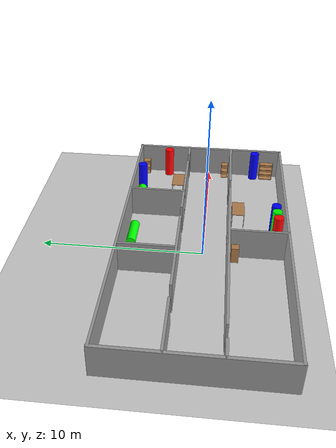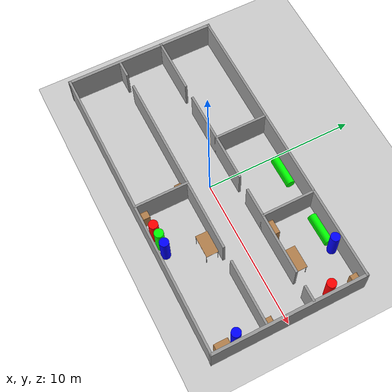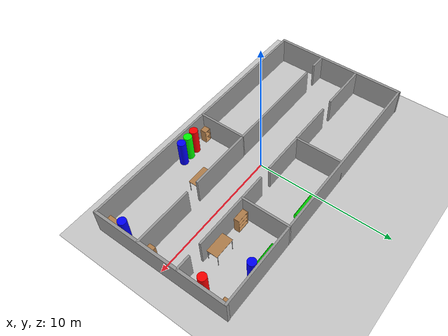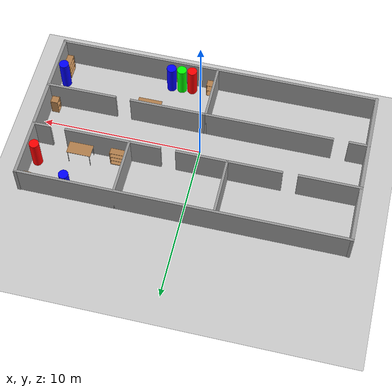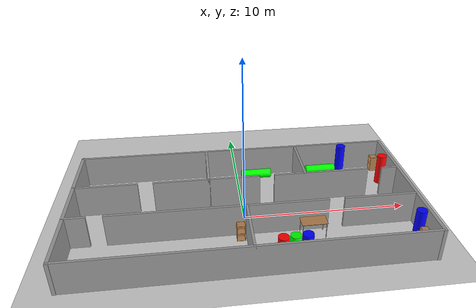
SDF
<sdf version="1.6">
 <world name="default">
  <model name="ground_plane">
   <static>1</static>
   <link name="link">
    <collision name="collision">
     <geometry><plane><normal>0 0 1</normal><size>100 100</size></plane></geometry>
     <surface>
      <contact><collide_bitmask>65535</collide_bitmask></contact>
      <friction><ode><mu>100</mu><mu2>50</mu2></ode></friction>
     </surface>
    </collision>
    <visual name="visual">
     <cast_shadows>0</cast_shadows>
     <geometry><plane><normal>0 0 1</normal><size>100 100</size></plane></geometry>
     <material>
      <script><uri>file://media/materials/scripts/gazebo.material</uri><name>Gazebo/Grey</name></script>
     </material>
    </visual>
   </link>
  </model>
  <model name="indoor1">
   <link name="Wall_17">
    <pose>0 -1.5 0 0 -0 0</pose>
    <visual name="Wall_17_Visual_0">
     <pose>-9.43386 0 1 0 -0 0</pose>
     <geometry><box><size>1.28227 0.15 2</size></box></geometry>
     <material>
      <script><uri>file://media/materials/scripts/gazebo.material</uri><name>Gazebo/Grey</name></script>
      <ambient>1 1 1 1</ambient>
     </material>
     <meta><layer>0</layer></meta>
    </visual>
    <collision name="Wall_17_Collision_0">
     <geometry><box><size>1.28227 0.15 2</size></box></geometry>
     <pose>-9.43386 0 1 0 -0 0</pose>
    </collision>
    <visual name="Wall_17_Visual_1">
     <pose>-1.56699 0 1 0 -0 0</pose>
     <geometry><box><size>12.6515 0.15 2</size></box></geometry>
     <material>
      <script><uri>file://media/materials/scripts/gazebo.material</uri><name>Gazebo/Grey</name></script>
      <ambient>1 1 1 1</ambient>
     </material>
     <meta><layer>0</layer></meta>
    </visual>
    <collision name="Wall_17_Collision_1">
     <geometry><box><size>12.6515 0.15 2</size></box></geometry>
     <pose>-1.56699 0 1 0 -0 0</pose>
    </collision>
    <visual name="Wall_17_Visual_2">
     <pose>7.86687 0 1 0 -0 0</pose>
     <geometry><box><size>4.41625 0.15 2</size></box></geometry>
     <material>
      <script><uri>file://media/materials/scripts/gazebo.material</uri><name>Gazebo/Grey</name></script>
      <ambient>1 1 1 1</ambient>
     </material>
     <meta><layer>0</layer></meta>
    </visual>
    <collision name="Wall_17_Collision_2">
     <geometry><box><size>4.41625 0.15 2</size></box></geometry>
     <pose>7.86687 0 1 0 -0 0</pose>
    </collision>
   </link>
   <link name="Wall_19">
    <pose>0 1.5 0 0 -0 0</pose>
    <visual name="Wall_19_Visual_0">
     <pose>-8.16437 0 1 0 -0 0</pose>
     <geometry><box><size>3.82126 0.15 2</size></box></geometry>
     <material>
      <script><uri>file://media/materials/scripts/gazebo.material</uri><name>Gazebo/Grey</name></script>
      <ambient>1 1 1 1</ambient>
     </material>
     <meta><layer>0</layer></meta>
    </visual>
    <collision name="Wall_19_Collision_0">
     <geometry><box><size>3.82126 0.15 2</size></box></geometry>
     <pose>-8.16437 0 1 0 -0 0</pose>
    </collision>
    <visual name="Wall_19_Visual_1">
     <pose>-2.10232 0 1 0 -0 0</pose>
     <geometry><box><size>6.50284 0.15 2</size></box></geometry>
     <material>
      <script><uri>file://media/materials/scripts/gazebo.material</uri><name>Gazebo/Grey</name></script>
      <ambient>1 1 1 1</ambient>
     </material>
     <meta><layer>0</layer></meta>
    </visual>
    <collision name="Wall_19_Collision_1">
     <geometry><box><size>6.50284 0.15 2</size></box></geometry>
     <pose>-2.10232 0 1 0 -0 0</pose>
    </collision>
    <visual name="Wall_19_Visual_2">
     <pose>5.0405 0 1 0 -0 0</pose>
     <geometry><box><size>5.9828 0.15 2</size></box></geometry>
     <material>
      <script><uri>file://media/materials/scripts/gazebo.material</uri><name>Gazebo/Grey</name></script>
      <ambient>1 1 1 1</ambient>
     </material>
     <meta><layer>0</layer></meta>
    </visual>
    <collision name="Wall_19_Collision_2">
     <geometry><box><size>5.9828 0.15 2</size></box></geometry>
     <pose>5.0405 0 1 0 -0 0</pose>
    </collision>
    <visual name="Wall_19_Visual_3">
     <pose>9.50345 0 1 0 -0 0</pose>
     <geometry><box><size>1.1431 0.15 2</size></box></geometry>
     <material>
      <script><uri>file://media/materials/scripts/gazebo.material</uri><name>Gazebo/Grey</name></script>
      <ambient>1 1 1 1</ambient>
     </material>
     <meta><layer>0</layer></meta>
    </visual>
    <collision name="Wall_19_Collision_3">
     <geometry><box><size>1.1431 0.15 2</size></box></geometry>
     <pose>9.50345 0 1 0 -0 0</pose>
    </collision>
   </link>
   <link name="Wall_21">
    <collision name="Wall_21_Collision">
     <geometry><box><size>3.65 0.15 2</size></box></geometry>
     <pose>0 0 1 0 -0 0</pose>
    </collision>
    <visual name="Wall_21_Visual">
     <pose>0 0 1 0 -0 0</pose>
     <geometry><box><size>3.65 0.15 2</size></box></geometry>
     <material>
      <script><uri>file://media/materials/scripts/gazebo.material</uri><name>Gazebo/Grey</name></script>
      <ambient>1 1 1 1</ambient>
     </material>
     <meta><layer>0</layer></meta>
    </visual>
    <pose>-2 3.25 0 0 -0 1.5708</pose>
   </link>
   <link name="Wall_23">
    <collision name="Wall_23_Collision">
     <geometry><box><size>3.65 0.15 2</size></box></geometry>
     <pose>0 0 1 0 -0 0</pose>
    </collision>
    <visual name="Wall_23_Visual">
     <pose>0 0 1 0 -0 0</pose>
     <geometry><box><size>3.65 0.15 2</size></box></geometry>
     <material>
      <script><uri>file://media/materials/scripts/gazebo.material</uri><name>Gazebo/Grey</name></script>
      <ambient>1 1 1 1</ambient>
     </material>
     <meta><layer>0</layer></meta>
    </visual>
    <pose>4 3.25 0 0 -0 1.5708</pose>
   </link>
   <link name="Wall_25">
    <collision name="Wall_25_Collision">
     <geometry><box><size>3.65 0.15 2</size></box></geometry>
     <pose>0 0 1 0 -0 0</pose>
    </collision>
    <visual name="Wall_25_Visual">
     <pose>0 0 1 0 -0 0</pose>
     <geometry><box><size>3.65 0.15 2</size></box></geometry>
     <material>
      <script><uri>file://media/materials/scripts/gazebo.material</uri><name>Gazebo/Grey</name></script>
      <ambient>1 1 1 1</ambient>
     </material>
     <meta><layer>0</layer></meta>
    </visual>
    <pose>0 -3.25 0 0 -0 1.5708</pose>
   </link>
   <link name="Wall_5">
    <collision name="Wall_5_Collision">
     <geometry><box><size>20.15 0.15 2</size></box></geometry>
     <pose>0 0 1 0 -0 0</pose>
    </collision>
    <visual name="Wall_5_Visual">
     <pose>0 0 1 0 -0 0</pose>
     <geometry><box><size>20.15 0.15 2</size></box></geometry>
     <material>
      <script><uri>file://media/materials/scripts/gazebo.material</uri><name>Gazebo/Grey</name></script>
      <ambient>1 1 1 1</ambient>
     </material>
     <meta><layer>0</layer></meta>
    </visual>
    <pose>0 5 0 0 -0 0</pose>
   </link>
   <link name="Wall_6">
    <collision name="Wall_6_Collision">
     <geometry><box><size>10.2 0.2 2</size></box></geometry>
     <pose>0 0 1 0 -0 0</pose>
    </collision>
    <visual name="Wall_6_Visual">
     <pose>0 0 1 0 -0 0</pose>
     <geometry><box><size>10.2 0.2 2</size></box></geometry>
     <material>
      <script><uri>file://media/materials/scripts/gazebo.material</uri><name>Gazebo/Grey</name></script>
      <ambient>1 1 1 1</ambient>
     </material>
     <meta><layer>0</layer></meta>
    </visual>
    <pose>10 0 0 0 0 -1.5708</pose>
   </link>
   <link name="Wall_7">
    <collision name="Wall_7_Collision">
     <geometry><box><size>20.15 0.15 2</size></box></geometry>
     <pose>0 0 1 0 -0 0</pose>
    </collision>
    <visual name="Wall_7_Visual">
     <pose>0 0 1 0 -0 0</pose>
     <geometry><box><size>20.15 0.15 2</size></box></geometry>
     <material>
      <script><uri>file://media/materials/scripts/gazebo.material</uri><name>Gazebo/Grey</name></script>
      <ambient>1 1 1 1</ambient>
     </material>
     <meta><layer>0</layer></meta>
    </visual>
    <pose>0 -5 0 0 -0 3.14159</pose>
   </link>
   <link name="Wall_8">
    <collision name="Wall_8_Collision">
     <geometry><box><size>10.2 0.2 2</size></box></geometry>
     <pose>0 0 1 0 -0 0</pose>
    </collision>
    <visual name="Wall_8_Visual">
     <pose>0 0 1 0 -0 0</pose>
     <geometry><box><size>10.2 0.2 2</size></box></geometry>
     <material>
      <script><uri>file://media/materials/scripts/gazebo.material</uri><name>Gazebo/Grey</name></script>
      <ambient>1 1 1 1</ambient>
     </material>
     <meta><layer>0</layer></meta>
    </visual>
    <pose>-10 0 0 0 -0 1.5708</pose>
   </link>
   <static>1</static>
  </model>
  <model name="bookshelf2">
   <static>1</static>
   <link name="link">
    <inertial><mass>1</mass></inertial>
    <collision name="back">
     <pose>0 0.005 0.6 0 -0 0</pose>
     <geometry><box><size>0.9 0.01 1.2</size></box></geometry>
    </collision>
    <visual name="visual1">
     <pose>0 0.005 0.6 0 -0 0</pose>
     <geometry><box><size>0.9 0.01 1.2</size></box></geometry>
     <material>
      <script><uri>file://media/materials/scripts/gazebo.material</uri><name>Gazebo/Wood</name></script>
     </material>
    </visual>
    <collision name="left_side">
     <pose>0.45 -0.195 0.6 0 -0 0</pose>
     <geometry><box><size>0.02 0.4 1.2</size></box></geometry>
    </collision>
    <visual name="visual2">
     <pose>0.45 -0.195 0.6 0 -0 0</pose>
     <geometry><box><size>0.02 0.4 1.2</size></box></geometry>
     <material>
      <script><uri>file://media/materials/scripts/gazebo.material</uri><name>Gazebo/Wood</name></script>
     </material>
    </visual>
    <collision name="right_side">
     <pose>-0.45 -0.195 0.6 0 -0 0</pose>
     <geometry><box><size>0.02 0.4 1.2</size></box></geometry>
    </collision>
    <visual name="visual3">
     <pose>-0.45 -0.195 0.6 0 -0 0</pose>
     <geometry><box><size>0.02 0.4 1.2</size></box></geometry>
     <material>
      <script><uri>file://media/materials/scripts/gazebo.material</uri><name>Gazebo/Wood</name></script>
     </material>
    </visual>
    <collision name="bottom">
     <pose>0 -0.195 0.03 0 -0 0</pose>
     <geometry><box><size>0.88 0.4 0.06</size></box></geometry>
    </collision>
    <visual name="visual4">
     <pose>0 -0.195 0.03 0 -0 0</pose>
     <geometry><box><size>0.88 0.4 0.06</size></box></geometry>
     <material>
      <script><uri>file://media/materials/scripts/gazebo.material</uri><name>Gazebo/Wood</name></script>
     </material>
    </visual>
    <collision name="top">
     <pose>0 -0.195 1.19 0 -0 0</pose>
     <geometry><box><size>0.88 0.4 0.02</size></box></geometry>
    </collision>
    <visual name="visual5">
     <pose>0 -0.195 1.19 0 -0 0</pose>
     <geometry><box><size>0.88 0.4 0.02</size></box></geometry>
     <material>
      <script><uri>file://media/materials/scripts/gazebo.material</uri><name>Gazebo/Wood</name></script>
     </material>
    </visual>
    <collision name="low_shelf">
     <pose>0 -0.195 0.43 0 -0 0</pose>
     <geometry><box><size>0.88 0.4 0.02</size></box></geometry>
    </collision>
    <visual name="visual6">
     <pose>0 -0.195 0.43 0 -0 0</pose>
     <geometry><box><size>0.88 0.4 0.02</size></box></geometry>
     <material>
      <script><uri>file://media/materials/scripts/gazebo.material</uri><name>Gazebo/Wood</name></script>
     </material>
    </visual>
    <collision name="high_shelf">
     <pose>0 -0.195 0.8 0 -0 0</pose>
     <geometry><box><size>0.88 0.4 0.02</size></box></geometry>
    </collision>
    <visual name="visual7">
     <pose>0 -0.195 0.8 0 -0 0</pose>
     <geometry><box><size>0.88 0.4 0.02</size></box></geometry>
     <material>
      <script><uri>file://media/materials/scripts/gazebo.material</uri><name>Gazebo/Wood</name></script>
     </material>
    </visual>
   </link>
   <pose>4.67727 1.69299 0 0 0 -3.14159</pose>
  </model>
  <model name="bookshelf3">
   <static>1</static>
   <link name="link">
    <inertial><mass>1</mass></inertial>
    <collision name="back">
     <pose>0 0.005 0.6 0 -0 0</pose>
     <geometry><box><size>0.9 0.01 1.2</size></box></geometry>
    </collision>
    <visual name="visual1">
     <pose>0 0.005 0.6 0 -0 0</pose>
     <geometry><box><size>0.9 0.01 1.2</size></box></geometry>
     <material>
      <script><uri>file://media/materials/scripts/gazebo.material</uri><name>Gazebo/Wood</name></script>
     </material>
    </visual>
    <collision name="left_side">
     <pose>0.45 -0.195 0.6 0 -0 0</pose>
     <geometry><box><size>0.02 0.4 1.2</size></box></geometry>
    </collision>
    <visual name="visual2">
     <pose>0.45 -0.195 0.6 0 -0 0</pose>
     <geometry><box><size>0.02 0.4 1.2</size></box></geometry>
     <material>
      <script><uri>file://media/materials/scripts/gazebo.material</uri><name>Gazebo/Wood</name></script>
     </material>
    </visual>
    <collision name="right_side">
     <pose>-0.45 -0.195 0.6 0 -0 0</pose>
     <geometry><box><size>0.02 0.4 1.2</size></box></geometry>
    </collision>
    <visual name="visual3">
     <pose>-0.45 -0.195 0.6 0 -0 0</pose>
     <geometry><box><size>0.02 0.4 1.2</size></box></geometry>
     <material>
      <script><uri>file://media/materials/scripts/gazebo.material</uri><name>Gazebo/Wood</name></script>
     </material>
    </visual>
    <collision name="bottom">
     <pose>0 -0.195 0.03 0 -0 0</pose>
     <geometry><box><size>0.88 0.4 0.06</size></box></geometry>
    </collision>
    <visual name="visual4">
     <pose>0 -0.195 0.03 0 -0 0</pose>
     <geometry><box><size>0.88 0.4 0.06</size></box></geometry>
     <material>
      <script><uri>file://media/materials/scripts/gazebo.material</uri><name>Gazebo/Wood</name></script>
     </material>
    </visual>
    <collision name="top">
     <pose>0 -0.195 1.19 0 -0 0</pose>
     <geometry><box><size>0.88 0.4 0.02</size></box></geometry>
    </collision>
    <visual name="visual5">
     <pose>0 -0.195 1.19 0 -0 0</pose>
     <geometry><box><size>0.88 0.4 0.02</size></box></geometry>
     <material>
      <script><uri>file://media/materials/scripts/gazebo.material</uri><name>Gazebo/Wood</name></script>
     </material>
    </visual>
    <collision name="low_shelf">
     <pose>0 -0.195 0.43 0 -0 0</pose>
     <geometry><box><size>0.88 0.4 0.02</size></box></geometry>
    </collision>
    <visual name="visual6">
     <pose>0 -0.195 0.43 0 -0 0</pose>
     <geometry><box><size>0.88 0.4 0.02</size></box></geometry>
     <material>
      <script><uri>file://media/materials/scripts/gazebo.material</uri><name>Gazebo/Wood</name></script>
     </material>
    </visual>
    <collision name="high_shelf">
     <pose>0 -0.195 0.8 0 -0 0</pose>
     <geometry><box><size>0.88 0.4 0.02</size></box></geometry>
    </collision>
    <visual name="visual7">
     <pose>0 -0.195 0.8 0 -0 0</pose>
     <geometry><box><size>0.88 0.4 0.02</size></box></geometry>
     <material>
      <script><uri>file://media/materials/scripts/gazebo.material</uri><name>Gazebo/Wood</name></script>
     </material>
    </visual>
   </link>
   <pose>9.76318 -4.11921 0 0 0 -1.57079</pose>
  </model>
  <model name="cabinet0">
   <static>1</static>
   <link name="cabinet_bottom_plate">
    <inertial>
     <pose>0 0 -1 0 -0 0</pose>
     <inertia><ixx>2.05</ixx><ixy>0</ixy><ixz>0</ixz><iyy>2.05</iyy><iyz>0</iyz><izz>2.05</izz></inertia>
     <mass>25</mass>
    </inertial>
    <collision name="cabinet_bottom_plate_geom">
     <pose>0 0 0.01 0 -0 0</pose>
     <geometry><box><size>0.45 0.45 0.02</size></box></geometry>
    </collision>
    <visual name="cabinet_bottom_plate_geom_visual">
     <pose>0 0 0.01 0 -0 0</pose>
     <geometry><box><size>0.45 0.45 0.02</size></box></geometry>
     <material>
      <script><uri>file://media/materials/scripts/gazebo.material</uri><name>Gazebo/Wood</name></script>
     </material>
    </visual>
    <collision name="cabinet_bottom_plate_geom_cabinet_back_plate">
     <pose>0.235 0 0.51 0 -0 0</pose>
     <geometry><box><size>0.02 0.45 1.02</size></box></geometry>
    </collision>
    <visual name="cabinet_bottom_plate_geom_cabinet_back_plate_visual">
     <pose>0.235 0 0.51 0 -0 0</pose>
     <geometry><box><size>0.02 0.45 1.02</size></box></geometry>
     <material>
      <script><uri>file://media/materials/scripts/gazebo.material</uri><name>Gazebo/Wood</name></script>
     </material>
    </visual>
    <collision name="cabinet_bottom_plate_geom_cabinet_left_plate">
     <pose>0 0.235 0.51 0 -0 0</pose>
     <geometry><box><size>0.45 0.02 1.02</size></box></geometry>
    </collision>
    <visual name="cabinet_bottom_plate_geom_cabinet_left_plate_visual">
     <pose>0 0.235 0.51 0 -0 0</pose>
     <geometry><box><size>0.45 0.02 1.02</size></box></geometry>
     <material>
      <script><uri>file://media/materials/scripts/gazebo.material</uri><name>Gazebo/Wood</name></script>
     </material>
    </visual>
    <collision name="cabinet_bottom_plate_geom_cabinet_middle_plate">
     <pose>0 0 0.51 0 -0 0</pose>
     <geometry><box><size>0.45 0.45 0.02</size></box></geometry>
    </collision>
    <visual name="cabinet_bottom_plate_geom_cabinet_middle_plate_visual">
     <pose>0 0 0.51 0 -0 0</pose>
     <geometry><box><size>0.45 0.45 0.02</size></box></geometry>
     <material>
      <script><uri>file://media/materials/scripts/gazebo.material</uri><name>Gazebo/Wood</name></script>
     </material>
    </visual>
    <collision name="cabinet_bottom_plate_geom_cabinet_right_plate">
     <pose>0 -0.235 0.51 0 -0 0</pose>
     <geometry><box><size>0.45 0.02 1.02</size></box></geometry>
    </collision>
    <visual name="cabinet_bottom_plate_geom_cabinet_right_plate_visual">
     <pose>0 -0.235 0.51 0 -0 0</pose>
     <geometry><box><size>0.45 0.02 1.02</size></box></geometry>
     <material>
      <script><uri>file://media/materials/scripts/gazebo.material</uri><name>Gazebo/Wood</name></script>
     </material>
    </visual>
    <collision name="cabinet_bottom_plate_geom_cabinet_top_plate">
     <pose>0 0 1.01 0 -0 0</pose>
     <geometry><box><size>0.45 0.45 0.02</size></box></geometry>
    </collision>
    <visual name="cabinet_bottom_plate_geom_cabinet_top_plate_visual">
     <pose>0 0 1.01 0 -0 0</pose>
     <geometry><box><size>0.45 0.45 0.02</size></box></geometry>
     <material>
      <script><uri>file://media/materials/scripts/gazebo.material</uri><name>Gazebo/Wood</name></script>
     </material>
    </visual>
   </link>
   <pose>9.58424 4.59301 0 0 -0 0</pose>
  </model>
  <model name="cabinet1">
   <static>1</static>
   <link name="cabinet_bottom_plate">
    <inertial>
     <pose>0 0 -1 0 -0 0</pose>
     <inertia><ixx>2.05</ixx><ixy>0</ixy><ixz>0</ixz><iyy>2.05</iyy><iyz>0</iyz><izz>2.05</izz></inertia>
     <mass>25</mass>
    </inertial>
    <collision name="cabinet_bottom_plate_geom">
     <pose>0 0 0.01 0 -0 0</pose>
     <geometry><box><size>0.45 0.45 0.02</size></box></geometry>
    </collision>
    <visual name="cabinet_bottom_plate_geom_visual">
     <pose>0 0 0.01 0 -0 0</pose>
     <geometry><box><size>0.45 0.45 0.02</size></box></geometry>
     <material>
      <script><uri>file://media/materials/scripts/gazebo.material</uri><name>Gazebo/Wood</name></script>
     </material>
    </visual>
    <collision name="cabinet_bottom_plate_geom_cabinet_back_plate">
     <pose>0.235 0 0.51 0 -0 0</pose>
     <geometry><box><size>0.02 0.45 1.02</size></box></geometry>
    </collision>
    <visual name="cabinet_bottom_plate_geom_cabinet_back_plate_visual">
     <pose>0.235 0 0.51 0 -0 0</pose>
     <geometry><box><size>0.02 0.45 1.02</size></box></geometry>
     <material>
      <script><uri>file://media/materials/scripts/gazebo.material</uri><name>Gazebo/Wood</name></script>
     </material>
    </visual>
    <collision name="cabinet_bottom_plate_geom_cabinet_left_plate">
     <pose>0 0.235 0.51 0 -0 0</pose>
     <geometry><box><size>0.45 0.02 1.02</size></box></geometry>
    </collision>
    <visual name="cabinet_bottom_plate_geom_cabinet_left_plate_visual">
     <pose>0 0.235 0.51 0 -0 0</pose>
     <geometry><box><size>0.45 0.02 1.02</size></box></geometry>
     <material>
      <script><uri>file://media/materials/scripts/gazebo.material</uri><name>Gazebo/Wood</name></script>
     </material>
    </visual>
    <collision name="cabinet_bottom_plate_geom_cabinet_middle_plate">
     <pose>0 0 0.51 0 -0 0</pose>
     <geometry><box><size>0.45 0.45 0.02</size></box></geometry>
    </collision>
    <visual name="cabinet_bottom_plate_geom_cabinet_middle_plate_visual">
     <pose>0 0 0.51 0 -0 0</pose>
     <geometry><box><size>0.45 0.45 0.02</size></box></geometry>
     <material>
      <script><uri>file://media/materials/scripts/gazebo.material</uri><name>Gazebo/Wood</name></script>
     </material>
    </visual>
    <collision name="cabinet_bottom_plate_geom_cabinet_right_plate">
     <pose>0 -0.235 0.51 0 -0 0</pose>
     <geometry><box><size>0.45 0.02 1.02</size></box></geometry>
    </collision>
    <visual name="cabinet_bottom_plate_geom_cabinet_right_plate_visual">
     <pose>0 -0.235 0.51 0 -0 0</pose>
     <geometry><box><size>0.45 0.02 1.02</size></box></geometry>
     <material>
      <script><uri>file://media/materials/scripts/gazebo.material</uri><name>Gazebo/Wood</name></script>
     </material>
    </visual>
    <collision name="cabinet_bottom_plate_geom_cabinet_top_plate">
     <pose>0 0 1.01 0 -0 0</pose>
     <geometry><box><size>0.45 0.45 0.02</size></box></geometry>
    </collision>
    <visual name="cabinet_bottom_plate_geom_cabinet_top_plate_visual">
     <pose>0 0 1.01 0 -0 0</pose>
     <geometry><box><size>0.45 0.45 0.02</size></box></geometry>
     <material>
      <script><uri>file://media/materials/scripts/gazebo.material</uri><name>Gazebo/Wood</name></script>
     </material>
    </visual>
   </link>
   <pose>9.56465 -1.12003 0 0 -0 0</pose>
  </model>
  <model name="cabinet2">
   <static>1</static>
   <link name="cabinet_bottom_plate">
    <inertial>
     <pose>0 0 -1 0 -0 0</pose>
     <inertia><ixx>2.05</ixx><ixy>0</ixy><ixz>0</ixz><iyy>2.05</iyy><iyz>0</iyz><izz>2.05</izz></inertia>
     <mass>25</mass>
    </inertial>
    <collision name="cabinet_bottom_plate_geom">
     <pose>0 0 0.01 0 -0 0</pose>
     <geometry><box><size>0.45 0.45 0.02</size></box></geometry>
    </collision>
    <visual name="cabinet_bottom_plate_geom_visual">
     <pose>0 0 0.01 0 -0 0</pose>
     <geometry><box><size>0.45 0.45 0.02</size></box></geometry>
     <material>
      <script><uri>file://media/materials/scripts/gazebo.material</uri><name>Gazebo/Wood</name></script>
     </material>
    </visual>
    <collision name="cabinet_bottom_plate_geom_cabinet_back_plate">
     <pose>0.235 0 0.51 0 -0 0</pose>
     <geometry><box><size>0.02 0.45 1.02</size></box></geometry>
    </collision>
    <visual name="cabinet_bottom_plate_geom_cabinet_back_plate_visual">
     <pose>0.235 0 0.51 0 -0 0</pose>
     <geometry><box><size>0.02 0.45 1.02</size></box></geometry>
     <material>
      <script><uri>file://media/materials/scripts/gazebo.material</uri><name>Gazebo/Wood</name></script>
     </material>
    </visual>
    <collision name="cabinet_bottom_plate_geom_cabinet_left_plate">
     <pose>0 0.235 0.51 0 -0 0</pose>
     <geometry><box><size>0.45 0.02 1.02</size></box></geometry>
    </collision>
    <visual name="cabinet_bottom_plate_geom_cabinet_left_plate_visual">
     <pose>0 0.235 0.51 0 -0 0</pose>
     <geometry><box><size>0.45 0.02 1.02</size></box></geometry>
     <material>
      <script><uri>file://media/materials/scripts/gazebo.material</uri><name>Gazebo/Wood</name></script>
     </material>
    </visual>
    <collision name="cabinet_bottom_plate_geom_cabinet_middle_plate">
     <pose>0 0 0.51 0 -0 0</pose>
     <geometry><box><size>0.45 0.45 0.02</size></box></geometry>
    </collision>
    <visual name="cabinet_bottom_plate_geom_cabinet_middle_plate_visual">
     <pose>0 0 0.51 0 -0 0</pose>
     <geometry><box><size>0.45 0.45 0.02</size></box></geometry>
     <material>
      <script><uri>file://media/materials/scripts/gazebo.material</uri><name>Gazebo/Wood</name></script>
     </material>
    </visual>
    <collision name="cabinet_bottom_plate_geom_cabinet_right_plate">
     <pose>0 -0.235 0.51 0 -0 0</pose>
     <geometry><box><size>0.45 0.02 1.02</size></box></geometry>
    </collision>
    <visual name="cabinet_bottom_plate_geom_cabinet_right_plate_visual">
     <pose>0 -0.235 0.51 0 -0 0</pose>
     <geometry><box><size>0.45 0.02 1.02</size></box></geometry>
     <material>
      <script><uri>file://media/materials/scripts/gazebo.material</uri><name>Gazebo/Wood</name></script>
     </material>
    </visual>
    <collision name="cabinet_bottom_plate_geom_cabinet_top_plate">
     <pose>0 0 1.01 0 -0 0</pose>
     <geometry><box><size>0.45 0.45 0.02</size></box></geometry>
    </collision>
    <visual name="cabinet_bottom_plate_geom_cabinet_top_plate_visual">
     <pose>0 0 1.01 0 -0 0</pose>
     <geometry><box><size>0.45 0.45 0.02</size></box></geometry>
     <material>
      <script><uri>file://media/materials/scripts/gazebo.material</uri><name>Gazebo/Wood</name></script>
     </material>
    </visual>
   </link>
   <pose>-0.396131 -1.93123 0 0 -0 1.5708</pose>
  </model>
  <model name="cabinet5">
   <static>1</static>
   <link name="cabinet_bottom_plate">
    <inertial>
     <pose>0 0 -1 0 -0 0</pose>
     <inertia><ixx>2.05</ixx><ixy>0</ixy><ixz>0</ixz><iyy>2.05</iyy><iyz>0</iyz><izz>2.05</izz></inertia>
     <mass>25</mass>
    </inertial>
    <collision name="cabinet_bottom_plate_geom">
     <pose>0 0 0.01 0 -0 0</pose>
     <geometry><box><size>0.45 0.45 0.02</size></box></geometry>
    </collision>
    <visual name="cabinet_bottom_plate_geom_visual">
     <pose>0 0 0.01 0 -0 0</pose>
     <geometry><box><size>0.45 0.45 0.02</size></box></geometry>
     <material>
      <script><uri>file://media/materials/scripts/gazebo.material</uri><name>Gazebo/Wood</name></script>
     </material>
    </visual>
    <collision name="cabinet_bottom_plate_geom_cabinet_back_plate">
     <pose>0.235 0 0.51 0 -0 0</pose>
     <geometry><box><size>0.02 0.45 1.02</size></box></geometry>
    </collision>
    <visual name="cabinet_bottom_plate_geom_cabinet_back_plate_visual">
     <pose>0.235 0 0.51 0 -0 0</pose>
     <geometry><box><size>0.02 0.45 1.02</size></box></geometry>
     <material>
      <script><uri>file://media/materials/scripts/gazebo.material</uri><name>Gazebo/Wood</name></script>
     </material>
    </visual>
    <collision name="cabinet_bottom_plate_geom_cabinet_left_plate">
     <pose>0 0.235 0.51 0 -0 0</pose>
     <geometry><box><size>0.45 0.02 1.02</size></box></geometry>
    </collision>
    <visual name="cabinet_bottom_plate_geom_cabinet_left_plate_visual">
     <pose>0 0.235 0.51 0 -0 0</pose>
     <geometry><box><size>0.45 0.02 1.02</size></box></geometry>
     <material>
      <script><uri>file://media/materials/scripts/gazebo.material</uri><name>Gazebo/Wood</name></script>
     </material>
    </visual>
    <collision name="cabinet_bottom_plate_geom_cabinet_middle_plate">
     <pose>0 0 0.51 0 -0 0</pose>
     <geometry><box><size>0.45 0.45 0.02</size></box></geometry>
    </collision>
    <visual name="cabinet_bottom_plate_geom_cabinet_middle_plate_visual">
     <pose>0 0 0.51 0 -0 0</pose>
     <geometry><box><size>0.45 0.45 0.02</size></box></geometry>
     <material>
      <script><uri>file://media/materials/scripts/gazebo.material</uri><name>Gazebo/Wood</name></script>
     </material>
    </visual>
    <collision name="cabinet_bottom_plate_geom_cabinet_right_plate">
     <pose>0 -0.235 0.51 0 -0 0</pose>
     <geometry><box><size>0.45 0.02 1.02</size></box></geometry>
    </collision>
    <visual name="cabinet_bottom_plate_geom_cabinet_right_plate_visual">
     <pose>0 -0.235 0.51 0 -0 0</pose>
     <geometry><box><size>0.45 0.02 1.02</size></box></geometry>
     <material>
      <script><uri>file://media/materials/scripts/gazebo.material</uri><name>Gazebo/Wood</name></script>
     </material>
    </visual>
    <collision name="cabinet_bottom_plate_geom_cabinet_top_plate">
     <pose>0 0 1.01 0 -0 0</pose>
     <geometry><box><size>0.45 0.45 0.02</size></box></geometry>
    </collision>
    <visual name="cabinet_bottom_plate_geom_cabinet_top_plate_visual">
     <pose>0 0 1.01 0 -0 0</pose>
     <geometry><box><size>0.45 0.45 0.02</size></box></geometry>
     <material>
      <script><uri>file://media/materials/scripts/gazebo.material</uri><name>Gazebo/Wood</name></script>
     </material>
    </visual>
   </link>
   <pose>0.359861 -4.56277 0 0 0 -1.5708</pose>
  </model>
  <model name="table1">
   <static>1</static>
   <link name="link">
    <collision name="surface">
     <pose>0 0 1 0 -0 0</pose>
     <geometry><box><size>1.5 0.8 0.03</size></box></geometry>
     <surface><friction><ode><mu>0.6</mu><mu2>0.6</mu2></ode></friction></surface>
    </collision>
    <visual name="visual1">
     <pose>0 0 1 0 -0 0</pose>
     <geometry><box><size>1.5 0.8 0.03</size></box></geometry>
     <material>
      <script><uri>file://media/materials/scripts/gazebo.material</uri><name>Gazebo/Wood</name></script>
     </material>
    </visual>
    <collision name="front_left_leg">
     <pose>0.68 0.38 0.5 0 -0 0</pose>
     <geometry><cylinder><radius>0.02</radius><length>1</length></cylinder></geometry>
    </collision>
    <visual name="front_left_leg">
     <pose>0.68 0.38 0.5 0 -0 0</pose>
     <geometry><cylinder><radius>0.02</radius><length>1</length></cylinder></geometry>
     <material>
      <script><uri>file://media/materials/scripts/gazebo.material</uri><name>Gazebo/Grey</name></script>
     </material>
    </visual>
    <collision name="front_right_leg">
     <pose>0.68 -0.38 0.5 0 -0 0</pose>
     <geometry><cylinder><radius>0.02</radius><length>1</length></cylinder></geometry>
    </collision>
    <visual name="front_right_leg">
     <pose>0.68 -0.38 0.5 0 -0 0</pose>
     <geometry><cylinder><radius>0.02</radius><length>1</length></cylinder></geometry>
     <material>
      <script><uri>file://media/materials/scripts/gazebo.material</uri><name>Gazebo/Grey</name></script>
     </material>
    </visual>
    <collision name="back_right_leg">
     <pose>-0.68 -0.38 0.5 0 -0 0</pose>
     <geometry><cylinder><radius>0.02</radius><length>1</length></cylinder></geometry>
    </collision>
    <visual name="back_right_leg">
     <pose>-0.68 -0.38 0.5 0 -0 0</pose>
     <geometry><cylinder><radius>0.02</radius><length>1</length></cylinder></geometry>
     <material>
      <script><uri>file://media/materials/scripts/gazebo.material</uri><name>Gazebo/Grey</name></script>
     </material>
    </visual>
    <collision name="back_left_leg">
     <pose>-0.68 0.38 0.5 0 -0 0</pose>
     <geometry><cylinder><radius>0.02</radius><length>1</length></cylinder></geometry>
    </collision>
    <visual name="back_left_leg">
     <pose>-0.68 0.38 0.5 0 -0 0</pose>
     <geometry><cylinder><radius>0.02</radius><length>1</length></cylinder></geometry>
     <material>
      <script><uri>file://media/materials/scripts/gazebo.material</uri><name>Gazebo/Grey</name></script>
     </material>
    </visual>
   </link>
   <pose>3.74399 -2.10361 0 0 -0 0</pose>
  </model>
  <model name="table3">
   <static>1</static>
   <link name="link">
    <collision name="surface">
     <pose>0 0 1 0 -0 0</pose>
     <geometry><box><size>1.5 0.8 0.03</size></box></geometry>
     <surface><friction><ode><mu>0.6</mu><mu2>0.6</mu2></ode></friction></surface>
    </collision>
    <visual name="visual1">
     <pose>0 0 1 0 -0 0</pose>
     <geometry><box><size>1.5 0.8 0.03</size></box></geometry>
     <material>
      <script><uri>file://media/materials/scripts/gazebo.material</uri><name>Gazebo/Wood</name></script>
     </material>
    </visual>
    <collision name="front_left_leg">
     <pose>0.68 0.38 0.5 0 -0 0</pose>
     <geometry><cylinder><radius>0.02</radius><length>1</length></cylinder></geometry>
    </collision>
    <visual name="front_left_leg">
     <pose>0.68 0.38 0.5 0 -0 0</pose>
     <geometry><cylinder><radius>0.02</radius><length>1</length></cylinder></geometry>
     <material>
      <script><uri>file://media/materials/scripts/gazebo.material</uri><name>Gazebo/Grey</name></script>
     </material>
    </visual>
    <collision name="front_right_leg">
     <pose>0.68 -0.38 0.5 0 -0 0</pose>
     <geometry><cylinder><radius>0.02</radius><length>1</length></cylinder></geometry>
    </collision>
    <visual name="front_right_leg">
     <pose>0.68 -0.38 0.5 0 -0 0</pose>
     <geometry><cylinder><radius>0.02</radius><length>1</length></cylinder></geometry>
     <material>
      <script><uri>file://media/materials/scripts/gazebo.material</uri><name>Gazebo/Grey</name></script>
     </material>
    </visual>
    <collision name="back_right_leg">
     <pose>-0.68 -0.38 0.5 0 -0 0</pose>
     <geometry><cylinder><radius>0.02</radius><length>1</length></cylinder></geometry>
    </collision>
    <visual name="back_right_leg">
     <pose>-0.68 -0.38 0.5 0 -0 0</pose>
     <geometry><cylinder><radius>0.02</radius><length>1</length></cylinder></geometry>
     <material>
      <script><uri>file://media/materials/scripts/gazebo.material</uri><name>Gazebo/Grey</name></script>
     </material>
    </visual>
    <collision name="back_left_leg">
     <pose>-0.68 0.38 0.5 0 -0 0</pose>
     <geometry><cylinder><radius>0.02</radius><length>1</length></cylinder></geometry>
    </collision>
    <visual name="back_left_leg">
     <pose>-0.68 0.38 0.5 0 -0 0</pose>
     <geometry><cylinder><radius>0.02</radius><length>1</length></cylinder></geometry>
     <material>
      <script><uri>file://media/materials/scripts/gazebo.material</uri><name>Gazebo/Grey</name></script>
     </material>
    </visual>
   </link>
   <pose>6.98939 2.07765 0 0 -0 0</pose>
  </model>
  <model name="red4">
   <link name="link">
    <pose>-0.202221 0.506091 0 0 -0 0</pose>
    <inertial>
     <mass>1</mass>
     <inertia><ixx>0.145833</ixx><ixy>0</ixy><ixz>0</ixz><iyy>0.145833</iyy><iyz>0</iyz><izz>0.125</izz></inertia>
    </inertial>
    <visual name="visual">
     <geometry><cylinder><radius>0.3</radius><length>2</length></cylinder></geometry>
     <material>
      <script><name>Gazebo/Grey</name><uri>file://media/materials/scripts/gazebo.material</uri></script>
      <ambient>1 0 0 1</ambient>
      <diffuse>0.7 0.7 0.7 1</diffuse>
      <specular>0.01 0.01 0.01 1</specular>
      <emissive>0 0 0 1</emissive>
      <shader type="vertex"><normal_map>__default__</normal_map></shader>
     </material>
    </visual>
    <collision name="collision">
     <geometry><cylinder><radius>0.3</radius><length>2</length></cylinder></geometry>
     <surface>
      <friction>
       <ode><mu>1</mu><mu2>1</mu2><fdir1>0 0 0</fdir1><slip1>0</slip1><slip2>0</slip2></ode>
       <torsional>
        <coefficient>1</coefficient>
        <patch_radius>0</patch_radius>
        <surface_radius>0</surface_radius>
        <use_patch_radius>1</use_patch_radius>
        <ode><slip>0</slip></ode>
       </torsional>
      </friction>
      <bounce><restitution_coefficient>0</restitution_coefficient><threshold>1e+06</threshold></bounce>
      <contact>
       <collide_without_contact>0</collide_without_contact>
       <collide_without_contact_bitmask>1</collide_without_contact_bitmask>
       <collide_bitmask>1</collide_bitmask>
       <ode>
        <soft_cfm>0</soft_cfm>
        <soft_erp>0.2</soft_erp>
        <kp>1e+13</kp>
        <kd>1</kd>
        <max_vel>0.01</max_vel>
        <min_depth>0</min_depth>
       </ode>
       <bullet>
        <split_impulse>1</split_impulse>
        <split_impulse_penetration_threshold>-0.01</split_impulse_penetration_threshold>
        <soft_cfm>0</soft_cfm>
        <soft_erp>0.2</soft_erp>
        <kp>1e+13</kp>
        <kd>1</kd>
       </bullet>
      </contact>
     </surface>
    </collision>
   </link>
   <static>0</static>
   <pose>1.74911 -5.01792 0.999993 0 -0 1.2e-05</pose>
  </model>
  <model name="red5">
   <link name="link">
    <pose>-0.202221 0.506091 0 0 -0 0</pose>
    <inertial>
     <mass>1</mass>
     <inertia><ixx>0.145833</ixx><ixy>0</ixy><ixz>0</ixz><iyy>0.145833</iyy><iyz>0</iyz><izz>0.125</izz></inertia>
    </inertial>
    <visual name="visual">
     <geometry><cylinder><radius>0.3</radius><length>2</length></cylinder></geometry>
     <material>
      <script><name>Gazebo/Grey</name><uri>file://media/materials/scripts/gazebo.material</uri></script>
      <ambient>1 0 0 1</ambient>
      <diffuse>0.7 0.7 0.7 1</diffuse>
      <specular>0.01 0.01 0.01 1</specular>
      <emissive>0 0 0 1</emissive>
      <shader type="vertex"><normal_map>__default__</normal_map></shader>
     </material>
    </visual>
    <collision name="collision">
     <geometry><cylinder><radius>0.3</radius><length>2</length></cylinder></geometry>
     <surface>
      <friction>
       <ode><mu>1</mu><mu2>1</mu2><fdir1>0 0 0</fdir1><slip1>0</slip1><slip2>0</slip2></ode>
       <torsional>
        <coefficient>1</coefficient>
        <patch_radius>0</patch_radius>
        <surface_radius>0</surface_radius>
        <use_patch_radius>1</use_patch_radius>
        <ode><slip>0</slip></ode>
       </torsional>
      </friction>
      <bounce><restitution_coefficient>0</restitution_coefficient><threshold>1e+06</threshold></bounce>
      <contact>
       <collide_without_contact>0</collide_without_contact>
       <collide_without_contact_bitmask>1</collide_without_contact_bitmask>
       <collide_bitmask>1</collide_bitmask>
       <ode>
        <soft_cfm>0</soft_cfm>
        <soft_erp>0.2</soft_erp>
        <kp>1e+13</kp>
        <kd>1</kd>
        <max_vel>0.01</max_vel>
        <min_depth>0</min_depth>
       </ode>
       <bullet>
        <split_impulse>1</split_impulse>
        <split_impulse_penetration_threshold>-0.01</split_impulse_penetration_threshold>
        <soft_cfm>0</soft_cfm>
        <soft_erp>0.2</soft_erp>
        <kp>1e+13</kp>
        <kd>1</kd>
       </bullet>
      </contact>
     </surface>
    </collision>
   </link>
   <static>0</static>
   <pose>9.7134 2.42672 0.999993 0 -0 0</pose>
  </model>
  <model name="green5">
   <link name="link">
    <inertial>
     <mass>1</mass>
     <inertia><ixx>0.145833</ixx><ixy>0</ixy><ixz>0</ixz><iyy>0.145833</iyy><iyz>0</iyz><izz>0.125</izz></inertia>
    </inertial>
    <visual name="visual">
     <geometry><cylinder><radius>0.3</radius><length>2</length></cylinder></geometry>
     <material>
      <script><name>Gazebo/Grey</name><uri>file://media/materials/scripts/gazebo.material</uri></script>
      <ambient>0 1 0 1</ambient>
      <diffuse>0.7 0.7 0.7 1</diffuse>
      <specular>0.01 0.01 0.01 1</specular>
      <emissive>0 0 0 1</emissive>
      <shader type="vertex"><normal_map>__default__</normal_map></shader>
     </material>
    </visual>
    <collision name="collision">
     <geometry><cylinder><radius>0.3</radius><length>2</length></cylinder></geometry>
     <surface>
      <friction>
       <ode><mu>1</mu><mu2>1</mu2><fdir1>0 0 0</fdir1><slip1>0</slip1><slip2>0</slip2></ode>
       <torsional>
        <coefficient>1</coefficient>
        <patch_radius>0</patch_radius>
        <surface_radius>0</surface_radius>
        <use_patch_radius>1</use_patch_radius>
        <ode><slip>0</slip></ode>
       </torsional>
      </friction>
      <bounce><restitution_coefficient>0</restitution_coefficient><threshold>1e+06</threshold></bounce>
      <contact>
       <collide_without_contact>0</collide_without_contact>
       <collide_without_contact_bitmask>1</collide_without_contact_bitmask>
       <collide_bitmask>1</collide_bitmask>
       <ode>
        <soft_cfm>0</soft_cfm>
        <soft_erp>0.2</soft_erp>
        <kp>1e+13</kp>
        <kd>1</kd>
        <max_vel>0.01</max_vel>
        <min_depth>0</min_depth>
       </ode>
       <bullet>
        <split_impulse>1</split_impulse>
        <split_impulse_penetration_threshold>-0.01</split_impulse_penetration_threshold>
        <soft_cfm>0</soft_cfm>
        <soft_erp>0.2</soft_erp>
        <kp>1e+13</kp>
        <kd>1</kd>
       </bullet>
      </contact>
     </surface>
    </collision>
   </link>
   <static>0</static>
   <pose>2.19936 -4.45947 0.999999 0 0 -3.8e-05</pose>
  </model>
  <model name="green6">
   <link name="link">
    <inertial>
     <mass>1</mass>
     <inertia><ixx>0.145833</ixx><ixy>0</ixy><ixz>0</ixz><iyy>0.145833</iyy><iyz>0</iyz><izz>0.125</izz></inertia>
    </inertial>
    <visual name="visual">
     <geometry><cylinder><radius>0.3</radius><length>2</length></cylinder></geometry>
     <material>
      <script><name>Gazebo/Grey</name><uri>file://media/materials/scripts/gazebo.material</uri></script>
      <ambient>0 1 0 1</ambient>
      <diffuse>0.7 0.7 0.7 1</diffuse>
      <specular>0.01 0.01 0.01 1</specular>
      <emissive>0 0 0 1</emissive>
      <shader type="vertex"><normal_map>__default__</normal_map></shader>
     </material>
    </visual>
    <collision name="collision">
     <geometry><cylinder><radius>0.3</radius><length>2</length></cylinder></geometry>
     <surface>
      <friction>
       <ode><mu>1</mu><mu2>1</mu2><fdir1>0 0 0</fdir1><slip1>0</slip1><slip2>0</slip2></ode>
       <torsional>
        <coefficient>1</coefficient>
        <patch_radius>0</patch_radius>
        <surface_radius>0</surface_radius>
        <use_patch_radius>1</use_patch_radius>
        <ode><slip>0</slip></ode>
       </torsional>
      </friction>
      <bounce><restitution_coefficient>0</restitution_coefficient><threshold>1e+06</threshold></bounce>
      <contact>
       <collide_without_contact>0</collide_without_contact>
       <collide_without_contact_bitmask>1</collide_without_contact_bitmask>
       <collide_bitmask>1</collide_bitmask>
       <ode>
        <soft_cfm>0</soft_cfm>
        <soft_erp>0.2</soft_erp>
        <kp>1e+13</kp>
        <kd>1</kd>
        <max_vel>0.01</max_vel>
        <min_depth>0</min_depth>
       </ode>
       <bullet>
        <split_impulse>1</split_impulse>
        <split_impulse_penetration_threshold>-0.01</split_impulse_penetration_threshold>
        <soft_cfm>0</soft_cfm>
        <soft_erp>0.2</soft_erp>
        <kp>1e+13</kp>
        <kd>1</kd>
       </bullet>
      </contact>
     </surface>
    </collision>
   </link>
   <static>0</static>
   <pose>1.29769 4.51112 0.299956 1.57084 -0.141461 1.5734</pose>
  </model>
  <model name="green7">
   <link name="link">
    <inertial>
     <mass>1</mass>
     <inertia><ixx>0.145833</ixx><ixy>0</ixy><ixz>0</ixz><iyy>0.145833</iyy><iyz>0</iyz><izz>0.125</izz></inertia>
    </inertial>
    <visual name="visual">
     <geometry><cylinder><radius>0.3</radius><length>2</length></cylinder></geometry>
     <material>
      <script><name>Gazebo/Grey</name><uri>file://media/materials/scripts/gazebo.material</uri></script>
      <ambient>0 1 0 1</ambient>
      <diffuse>0.7 0.7 0.7 1</diffuse>
      <specular>0.01 0.01 0.01 1</specular>
      <emissive>0 0 0 1</emissive>
      <shader type="vertex"><normal_map>__default__</normal_map></shader>
     </material>
    </visual>
    <collision name="collision">
     <geometry><cylinder><radius>0.3</radius><length>2</length></cylinder></geometry>
     <surface>
      <friction>
       <ode><mu>1</mu><mu2>1</mu2><fdir1>0 0 0</fdir1><slip1>0</slip1><slip2>0</slip2></ode>
       <torsional>
        <coefficient>1</coefficient>
        <patch_radius>0</patch_radius>
        <surface_radius>0</surface_radius>
        <use_patch_radius>1</use_patch_radius>
        <ode><slip>0</slip></ode>
       </torsional>
      </friction>
      <bounce><restitution_coefficient>0</restitution_coefficient><threshold>1e+06</threshold></bounce>
      <contact>
       <collide_without_contact>0</collide_without_contact>
       <collide_without_contact_bitmask>1</collide_without_contact_bitmask>
       <collide_bitmask>1</collide_bitmask>
       <ode>
        <soft_cfm>0</soft_cfm>
        <soft_erp>0.2</soft_erp>
        <kp>1e+13</kp>
        <kd>1</kd>
        <max_vel>0.01</max_vel>
        <min_depth>0</min_depth>
       </ode>
       <bullet>
        <split_impulse>1</split_impulse>
        <split_impulse_penetration_threshold>-0.01</split_impulse_penetration_threshold>
        <soft_cfm>0</soft_cfm>
        <soft_erp>0.2</soft_erp>
        <kp>1e+13</kp>
        <kd>1</kd>
       </bullet>
      </contact>
     </surface>
    </collision>
   </link>
   <static>0</static>
   <pose>5.80438 4.58123 0.299956 1.57075 -0.040765 1.57797</pose>
  </model>
  <model name="blue0">
   <link name="link">
    <inertial>
     <mass>1</mass>
     <inertia><ixx>0.145833</ixx><ixy>0</ixy><ixz>0</ixz><iyy>0.145833</iyy><iyz>0</iyz><izz>0.125</izz></inertia>
    </inertial>
    <visual name="visual">
     <geometry><cylinder><radius>0.3</radius><length>2</length></cylinder></geometry>
     <material>
      <script><name>Gazebo/Grey</name><uri>file://media/materials/scripts/gazebo.material</uri></script>
      <ambient>0 0 1 1</ambient>
      <diffuse>0.7 0.7 0.7 1</diffuse>
      <specular>0.01 0.01 0.01 1</specular>
      <emissive>0 0 0 1</emissive>
      <shader type="vertex"><normal_map>__default__</normal_map></shader>
     </material>
    </visual>
    <collision name="collision">
     <geometry><cylinder><radius>0.2</radius><length>2</length></cylinder></geometry>
     <surface>
      <friction>
       <ode><mu>1</mu><mu2>1</mu2><fdir1>0 0 0</fdir1><slip1>0</slip1><slip2>0</slip2></ode>
       <torsional>
        <coefficient>1</coefficient>
        <patch_radius>0</patch_radius>
        <surface_radius>0</surface_radius>
        <use_patch_radius>1</use_patch_radius>
        <ode><slip>0</slip></ode>
       </torsional>
      </friction>
      <bounce><restitution_coefficient>0</restitution_coefficient><threshold>1e+06</threshold></bounce>
      <contact>
       <collide_without_contact>0</collide_without_contact>
       <collide_without_contact_bitmask>1</collide_without_contact_bitmask>
       <collide_bitmask>1</collide_bitmask>
       <ode>
        <soft_cfm>0</soft_cfm>
        <soft_erp>0.2</soft_erp>
        <kp>1e+13</kp>
        <kd>1</kd>
        <max_vel>0.01</max_vel>
        <min_depth>0</min_depth>
       </ode>
       <bullet>
        <split_impulse>1</split_impulse>
        <split_impulse_penetration_threshold>-0.01</split_impulse_penetration_threshold>
        <soft_cfm>0</soft_cfm>
        <soft_erp>0.2</soft_erp>
        <kp>1e+13</kp>
        <kd>1</kd>
       </bullet>
      </contact>
     </surface>
    </collision>
   </link>
   <static>0</static>
   <pose>2.86111 -4.43532 1 0 0 -0.000793</pose>
  </model>
  <model name="blue1">
   <link name="link">
    <inertial>
     <mass>1</mass>
     <inertia><ixx>0.145833</ixx><ixy>0</ixy><ixz>0</ixz><iyy>0.145833</iyy><iyz>0</iyz><izz>0.125</izz></inertia>
    </inertial>
    <visual name="visual">
     <geometry><cylinder><radius>0.3</radius><length>2</length></cylinder></geometry>
     <material>
      <script><name>Gazebo/Grey</name><uri>file://media/materials/scripts/gazebo.material</uri></script>
      <ambient>0 0 1 1</ambient>
      <diffuse>0.7 0.7 0.7 1</diffuse>
      <specular>0.01 0.01 0.01 1</specular>
      <emissive>0 0 0 1</emissive>
      <shader type="vertex"><normal_map>__default__</normal_map></shader>
     </material>
    </visual>
    <collision name="collision">
     <geometry><cylinder><radius>0.2</radius><length>2</length></cylinder></geometry>
     <surface>
      <friction>
       <ode><mu>1</mu><mu2>1</mu2><fdir1>0 0 0</fdir1><slip1>0</slip1><slip2>0</slip2></ode>
       <torsional>
        <coefficient>1</coefficient>
        <patch_radius>0</patch_radius>
        <surface_radius>0</surface_radius>
        <use_patch_radius>1</use_patch_radius>
        <ode><slip>0</slip></ode>
       </torsional>
      </friction>
      <bounce><restitution_coefficient>0</restitution_coefficient><threshold>1e+06</threshold></bounce>
      <contact>
       <collide_without_contact>0</collide_without_contact>
       <collide_without_contact_bitmask>1</collide_without_contact_bitmask>
       <collide_bitmask>1</collide_bitmask>
       <ode>
        <soft_cfm>0</soft_cfm>
        <soft_erp>0.2</soft_erp>
        <kp>1e+13</kp>
        <kd>1</kd>
        <max_vel>0.01</max_vel>
        <min_depth>0</min_depth>
       </ode>
       <bullet>
        <split_impulse>1</split_impulse>
        <split_impulse_penetration_threshold>-0.01</split_impulse_penetration_threshold>
        <soft_cfm>0</soft_cfm>
        <soft_erp>0.2</soft_erp>
        <kp>1e+13</kp>
        <kd>1</kd>
       </bullet>
      </contact>
     </surface>
    </collision>
   </link>
   <static>0</static>
   <pose>7.16624 4.59432 0.99999 -0 -0 -0.000861</pose>
  </model>
  <model name="blue2">
   <link name="link">
    <inertial>
     <mass>1</mass>
     <inertia><ixx>0.145833</ixx><ixy>0</ixy><ixz>0</ixz><iyy>0.145833</iyy><iyz>0</iyz><izz>0.125</izz></inertia>
    </inertial>
    <visual name="visual">
     <geometry><cylinder><radius>0.3</radius><length>2</length></cylinder></geometry>
     <material>
      <script><name>Gazebo/Grey</name><uri>file://media/materials/scripts/gazebo.material</uri></script>
      <ambient>0 0 1 1</ambient>
      <diffuse>0.7 0.7 0.7 1</diffuse>
      <specular>0.01 0.01 0.01 1</specular>
      <emissive>0 0 0 1</emissive>
      <shader type="vertex"><normal_map>__default__</normal_map></shader>
     </material>
    </visual>
    <collision name="collision">
     <geometry><cylinder><radius>0.2</radius><length>2</length></cylinder></geometry>
     <surface>
      <friction>
       <ode><mu>1</mu><mu2>1</mu2><fdir1>0 0 0</fdir1><slip1>0</slip1><slip2>0</slip2></ode>
       <torsional>
        <coefficient>1</coefficient>
        <patch_radius>0</patch_radius>
        <surface_radius>0</surface_radius>
        <use_patch_radius>1</use_patch_radius>
        <ode><slip>0</slip></ode>
       </torsional>
      </friction>
      <bounce><restitution_coefficient>0</restitution_coefficient><threshold>1e+06</threshold></bounce>
      <contact>
       <collide_without_contact>0</collide_without_contact>
       <collide_without_contact_bitmask>1</collide_without_contact_bitmask>
       <collide_bitmask>1</collide_bitmask>
       <ode>
        <soft_cfm>0</soft_cfm>
        <soft_erp>0.2</soft_erp>
        <kp>1e+13</kp>
        <kd>1</kd>
        <max_vel>0.01</max_vel>
        <min_depth>0</min_depth>
       </ode>
       <bullet>
        <split_impulse>1</split_impulse>
        <split_impulse_penetration_threshold>-0.01</split_impulse_penetration_threshold>
        <soft_cfm>0</soft_cfm>
        <soft_erp>0.2</soft_erp>
        <kp>1e+13</kp>
        <kd>1</kd>
       </bullet>
      </contact>
     </surface>
    </collision>
   </link>
   <static>0</static>
   <pose>9.53619 -3.22515 0.99999 0 -0 -0.000874</pose>
  </model>
 </world>
</sdf>
